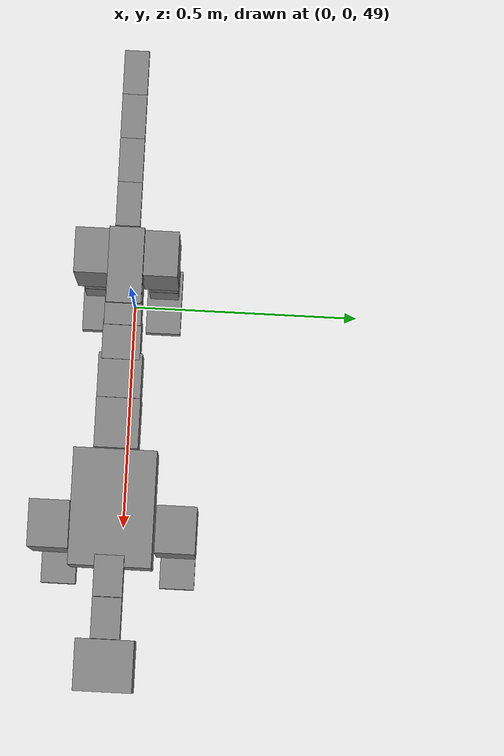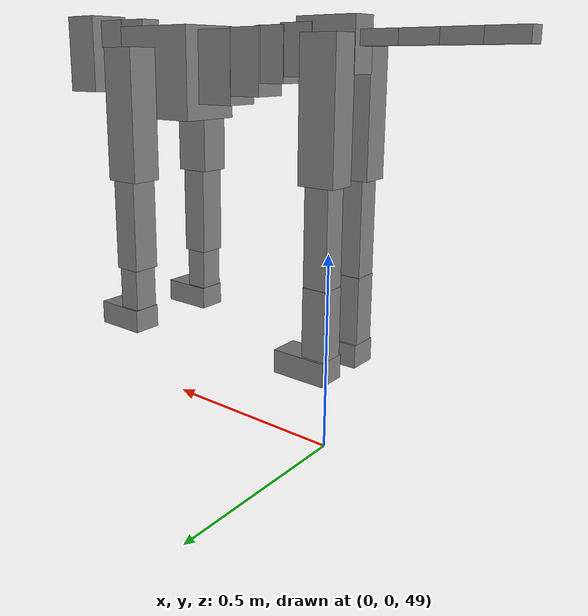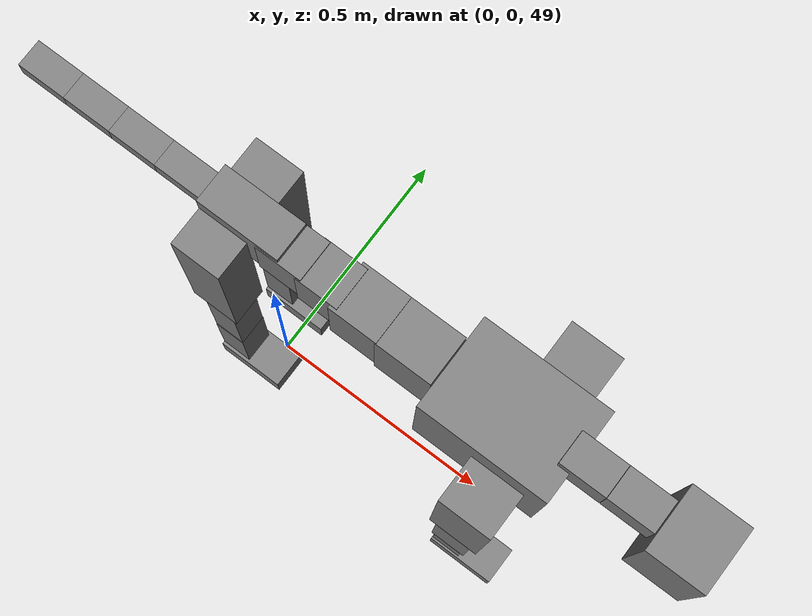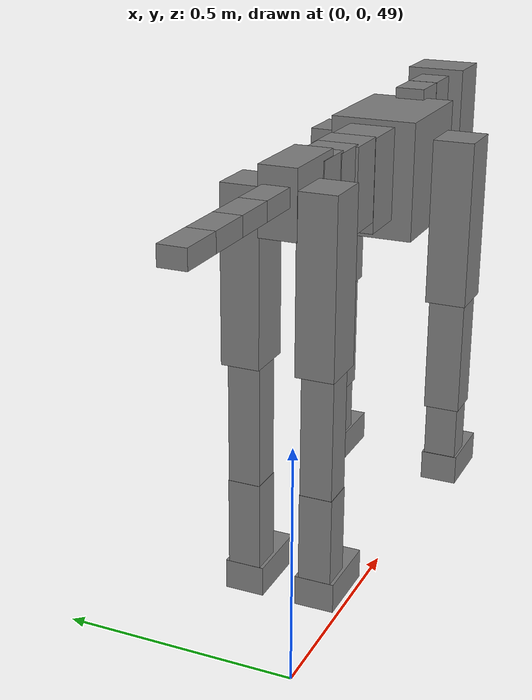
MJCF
<mujoco model="dog">

    <default>
        <joint armature="0.02" stiffness="1" damping="0.2" limited="true" />
        <geom condim="3" friction="1 0.05 0.05" margin="0.01" />
        <motor ctrllimited="true" ctrlrange="-1.0 1.0" forcelimited="true" gear="50" />
    </default>

    <compiler inertiafromgeom="true" angle="radian" />

    <option timestep="0.016" iterations="50" tolerance="1e-10" solver="Newton" jacobian="dense" cone="pyramidal" />

    <size nconmax="20000" njmax="60000" nstack="5000000" />
    <visual>
        <map force="0.1" zfar="30" />
        <rgba haze="0.15 0.25 0.35 1" />
        <quality shadowsize="2048" />
        <global offwidth="800" offheight="800" />
    </visual>

    <asset>
        <texture type="skybox" builtin="gradient" rgb1="0.3 0.5 0.7" rgb2="0 0 0" width="512" height="512" />
        <texture name="texplane" type="2d" builtin="checker" rgb1=".2 .3 .4" rgb2=".1 0.15 0.2" width="512" height="512" mark="cross" markrgb=".8 .8 .8" />
        <texture name="texgeom" type="cube" builtin="flat" mark="cross" width="127" height="1278" rgb1="0.8 0.6 0.4" rgb2="0.8 0.6 0.4" markrgb="1 1 1" random="0.01" />

        <material name="matplane" reflectance="0.3" texture="texplane" texrepeat="1 1" texuniform="true" />
        <material name="matgeom" texture="texgeom" texuniform="true" rgba="0.8 0.6 .4 1" />
    </asset>

    <worldbody>
        <geom name="floor" pos="0 0 0" size="0 0 .25" type="plane" material="matplane" condim="3" />

        <light directional="false" diffuse=".2 .2 .2" specular="0 0 0" pos="0 0 5" dir="0 0 -1" castshadow="false" />
        <light mode="targetbodycom" target="torso" directional="false" diffuse=".8 .8 .8" specular="0.3 0.3 0.3" pos="0 0 4.0" dir="0 0 -1" />

        <body name="root" pos="0 0 50">
            <freejoint name="root_1" />
            <geom type="box" pos="0 0 -0.02" size="0.0774  0.0358  0.063" density="2030" />

            <body name="spine1" pos="0.054 0 0">
                <joint name="spine1_y" axis="0 1 0" range="0 0.7" limited="true" />
                <geom type="box" pos="0.02375 0 -0.03" size="0.04375  0.0375  0.05985" density="2030" />

                <body name="spine2" pos="0.0612 0 0">
                    <joint name="spine2_y" axis="0 1 0" range="-0.15 0.15" limited="true" />
                    <geom type="box" pos="0.03555  0  -0.04" size="0.04055  0.039  0.06615" density="2030" />

                    <body name="spine3" pos="0.0730 0 0">
                        <joint name="spine3_y" axis="0 1 0" range="-0.15 0.15" limited="true" />
                        <geom type="box" pos="0.03555  0  -0.057" size="0.04555  0.0445  0.081" density="2030" />

                        <body name="spine4" pos="0.0780 0 0">
                            <joint name="spine4_y" axis="0 1 0" range="-0.15 0.15" limited="true" />
                            <geom type="box" pos="0.05265  0  -0.07" size="0.05265  0.045  0.09135" density="2030" />

                            <body name="torso" pos="0.1082 0 0">
                                <joint name="torso_y" axis="0 1 0" range="-0.15 0.15" limited="true" />
                                <geom type="box" pos="0.11925  0  -0.085" size="0.11925  0.085  0.11745" density="2030" />

                                <body name="neck1" pos="0.2160  0   0.0180">
                                    <joint name="neck1_y" axis="0 1 0" range="-1.2  -1" limited="true" />
                                    <geom type="box" pos="0.0423  0  0" size="0.0423  0.03  0.036" density="2325" />

                                    <body name="neck2" pos="0.0853  0  0">
                                        <joint name="neck2_y" axis="0 1 0" range="0.1  0" limited="true" />
                                        <geom type="box" pos="0.0423  0  0" size="0.0423  0.03  0.036" density="2325" />

                                        <body name="head" pos="0.0853  0  0">
                                            <joint name="head_y" axis="0 1 0" range="-0.3  -0.2" limited="true" />
                                            <geom type="box" pos="0.0531  0  -0.055" size="0.0531  0.06  0.1044" density="4030" />

                                        </body>
                                    </body>
                                </body>

                                <body name="front_shoulder" pos="0.156  0   -0.0480">
                                    <joint name="front_shoulder_y" axis="0 1 0" range="-1 1.5" limited="true" />
                                    <geom type="box" pos="0 0.13 -0.1429" size="0.0489  0.0418  0.1695" density="1158" />
                                    <geom type="box" pos="0 -0.13 -0.1429" size="0.0489  0.0418  0.1695" density="1158" />

                                    <body name="front_elbow" pos="0  0  -0.2857">
                                        <joint name="front_elbow_y" axis="0 1 0" range="-2 0" limited="true" />
                                        <geom type="box" pos="0 0.13 -0.1326" size="0.0362  0.0370  0.1326" density="1081" />
                                        <geom type="box" pos="0 -0.13 -0.1326" size="0.0362  0.0370  0.1326" density="1081" />

                                        <body name="front_wrist" pos="0  0  -0.2653">
                                            <joint name="front_wrist_y" axis="0 1 0" range="-0.2 0" limited="true" />
                                            <geom type="box" pos="0 0.13 -0.0627" size="0.0301  0.0334  0.0758" density="1664" />
                                            <geom type="box" pos="0 -0.13 -0.0627" size="0.0301  0.0334  0.0758" density="1664" />

                                            <body name="front_finger_end" pos="0  0  -0.1253">
                                                <joint name="front_finger_y" axis="0 1 0" range="-0.4 1" limited="true" />
                                                <geom type="box" pos="0.0378  0.13  -0.0157" size="0.0693  0.0378  0.0307" density="1515" />
                                                <geom type="box" pos="0.0378  -0.13  -0.0157" size="0.0693  0.0378  0.0307" density="1515" />

                                            </body>

                                        </body>
                                    </body>
                                </body>

                            </body>
                        </body>
                    </body>
                </body>
            </body>

            <body name="back_hip" pos="-0.03 0 -0.018">
                <joint name="back_hip_y" axis="0 1 0" range="-1.5 0.3" limited="true" />
                <geom type="box" pos="0 0.07 -0.1415" size="0.0463  0.0363  0.1643" density="1154" />
                <geom type="box" pos="0 -0.07 -0.1415" size="0.0463  0.0363  0.1643" density="1154" />

                <body name="back_knee" pos="0  0  -0.2830">
                    <joint name="back_knee_y" axis="0 1 0" range="0 2.8" limited="true" />
                    <geom type="box" pos="0 0.07 -0.1337" size="0.0309  0.0304  0.1492" density="1227" />
                    <geom type="box" pos="0 -0.07 -0.1337" size="0.0309  0.0304  0.1492" density="1227" />

                    <body name="back_ankle" pos="0  0  -0.2674">
                        <joint name="back_ankle_y" axis="0 1 0" range="-2.2 0" limited="true" />
                        <geom type="box" pos="0 0.07 -0.0863" size="0.0313  0.0313  0.0976" density="1284" />
                        <geom type="box" pos="0 -0.07 -0.0863" size="0.0313  0.0313  0.0976" density="1284" />

                        <body name="back_toe_end" pos="0  0  -0.1726">
                            <joint name="back_toe_y" axis="0 1 0" range="-0.4 1" limited="true" />
                            <geom type="box" pos="0.0377  0.07  -0.0139" size="0.0691  0.0377  0.0289" density="1515" />
                            <geom type="box" pos="0.0377  -0.07  -0.0139" size="0.0691  0.0377  0.0289" density="1515" />

                        </body>
                    </body>
                </body>
            </body>

            <body name="tail1" pos="-0.074 0 -0.006">
                <joint name="tail1_y" axis="0 1 0" range="-0.2 0.2" limited="true" />
                <geom type="box" pos="-0.0536  0  0" size="0.045  0.025  0.0175" density="1587" />

                <body name="tail2" pos="-0.09 0 0">
                    <joint name="tail2_y" axis="0 1 0" range="-0.2 0.2" limited="true" />
                    <geom type="box" pos="-0.0536  0  0" size="0.045  0.025  0.0175" density="1587" />

                    <body name="tail3" pos="-0.09 0 0">
                        <joint name="tail3_y" axis="0 1 0" range="-0.2 0.2" limited="true" />
                        <geom type="box" pos="-0.0536  0  0" size="0.045  0.025  0.0175" density="1587" />

                        <body name="tail4" pos="-0.09 0 0">
                            <joint name="tail4_y" axis="0 1 0" range="-0.2 0.2" limited="true" />
                            <geom type="box" pos="-0.0536  0  0" size="0.045  0.025  0.0175" density="1587" />

                        </body>
                    </body>
                </body>
            </body>
        </body>
    </worldbody>

    <actuator>
        <motor joint="spine1_y" forcerange="-150 150     " />
        <motor joint="spine2_y" forcerange="-150 150     " />
        <motor joint="spine3_y" forcerange="-150 150     " />
        <motor joint="spine4_y" forcerange="-150 150     " />
        <motor joint="torso_y" forcerange="-150 150     " />
        <motor joint="neck1_y" forcerange="-100 100       " />
        <motor joint="neck2_y" forcerange="-100 100       " />
        <motor joint="head_y" forcerange="-150 150       " />
        <motor joint="front_shoulder_y" forcerange="-198.40 180.21" />
        <motor joint="front_elbow_y" forcerange="-199.72 169.14" />
        <motor joint="front_wrist_y" forcerange="-122.59 144.77" />
        <motor joint="front_finger_y" forcerange="-62.83 98.71" />
        <motor joint="back_hip_y" forcerange="-329.28 354.69" />
        <motor joint="back_knee_y" forcerange="-315.24 327.48" />
        <motor joint="back_angle_y" forcerange="-191.75 209.22" />
        <motor joint="back_toe_y" forcerange="-87.88 133.81" />
        <motor joint="tail1_y" forcerange="-50 50     " />
        <motor joint="tail2_y" forcerange="-50 50     " />
        <motor joint="tail3_y" forcerange="-50 50     " />
        <motor joint="tail4_y" forcerange="-50 50     " />
    </actuator>
</mujoco>
